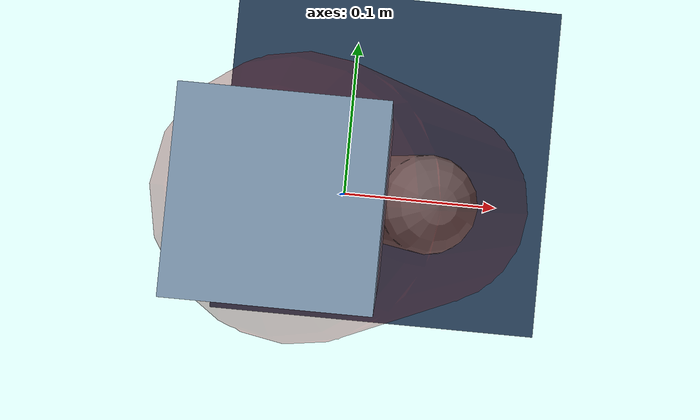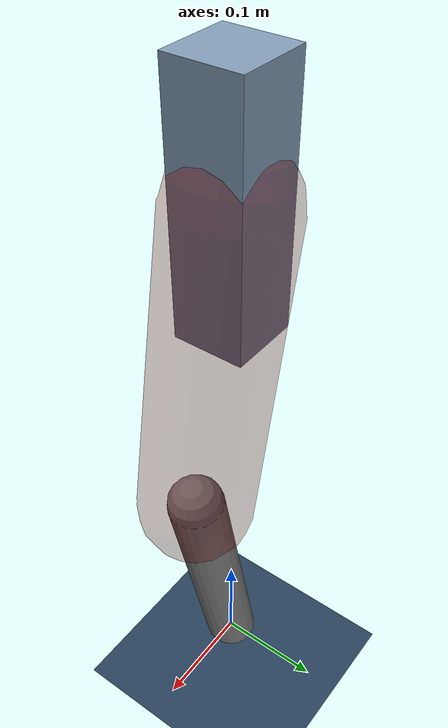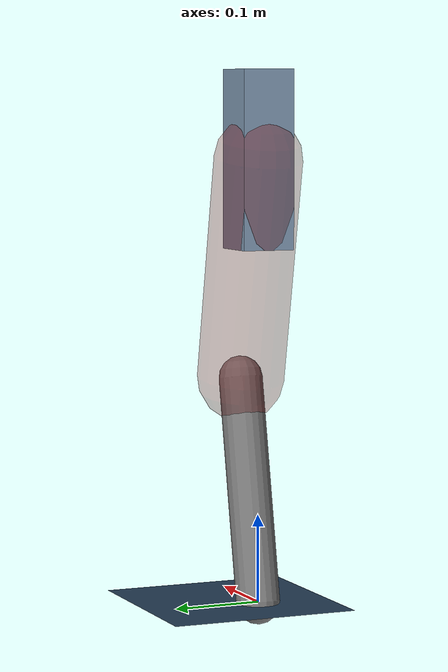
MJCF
<mujoco model="Hopper2D">
	<compiler inertiafromgeom="true" angle="radian" />
	<option timestep="0.001" integrator="implicit" cone="elliptic" solver="Newton" tolerance="1e-10" />

	<default>
		<geom contype="1" conaffinity="1" condim="3" friction="2 0.005 0.0001" solref="0.005 1" />
		<joint limited="true" damping="0.1" />
	</default>

	<asset>
		<texture name="skybox" type="skybox" builtin="gradient" rgb1=".4 .6 .8" rgb2="0 0 0" width="800" height="800" />
		<texture name="grid" type="2d" builtin="checker" rgb1=".1 .2 .3" rgb2=".2 .3 .4" width="300" height="300" mark="edge" markrgb=".2 .3 .4" />
		<material name="ground" texture="grid" texrepeat="1 1" texuniform="true" reflectance="0.1" />
		<material name="leg" rgba="0.5 0.6 0.7 1" />
	</asset>

	<worldbody>

		<geom name="floor" type="plane" size="5 5 0.25" material="ground" />

		<light directional="false" diffuse="0.8 0.8 0.8" specular="0.3 0.3 0.3" pos="0 0 2" dir="0 0 -1" />
		<light mode="targetbodycom" target="base" directional="false" diffuse="0.8 0.8 0.8" specular="0.3 0.3 0.3" pos="0 0 2" dir="0 0 -1" />

		<camera name="fixed" pos="0 -2 1" xyaxes="1 0 0 0 0 1" />
		<camera name="tracking" mode="trackcom" pos="0 -3 1" />

		<body name="root" pos="0 0 0.5012855386143946">
			<joint name="slide_x" type="slide" axis="1 0 0" range="-100 100" />
			<joint name="slide_z" type="slide" axis="0 0 1" range="0 10" />

			<body name="base" pos="0 0 0">
				<geom name="torso" type="box" size="0.03 0.03 0.1" mass="2.6319999999999997" material="leg" />

				<body name="link1" pos="0 0 0" euler="0 1.3719991427775253 0">
					<joint type="hinge" axis="0 -1 0" pos="0 0 0" name="hinge1" limited="true" range="-3.14 3.14" stiffness="0" damping="0.1" />
					<geom name="thigh" type="capsule" fromto="0 0 0 0.25476173982909645 0 0" size="0.05" rgba="0.5 0 0 0.3" mass="0.8687805235556507" />

					<body name="link2" pos="0.25476173982909645 0 0" euler="0 0.3962107471186396 0">
						<joint type="hinge" axis="0 -1 0" pos="0 0 0" name="hinge2" limited="true" range="-3.14 3.14" stiffness="0" damping="0.1" />
						<geom name="shank" type="capsule" fromto="0 0 0 0.2565237987852982 0 0" size="0.025" mass="0.44791903902823854" />

					</body>
				</body>
			</body>
		</body>
	</worldbody>

	<actuator>
		<motor name="torque1" joint="hinge1" ctrlrange="-56.90676124466744 56.90676124466744" ctrllimited="true" gear="1" />
		<motor name="torque2" joint="hinge2" ctrlrange="-155.5106464216055 155.5106464216055" ctrllimited="true" gear="1" />
	</actuator>
</mujoco>
